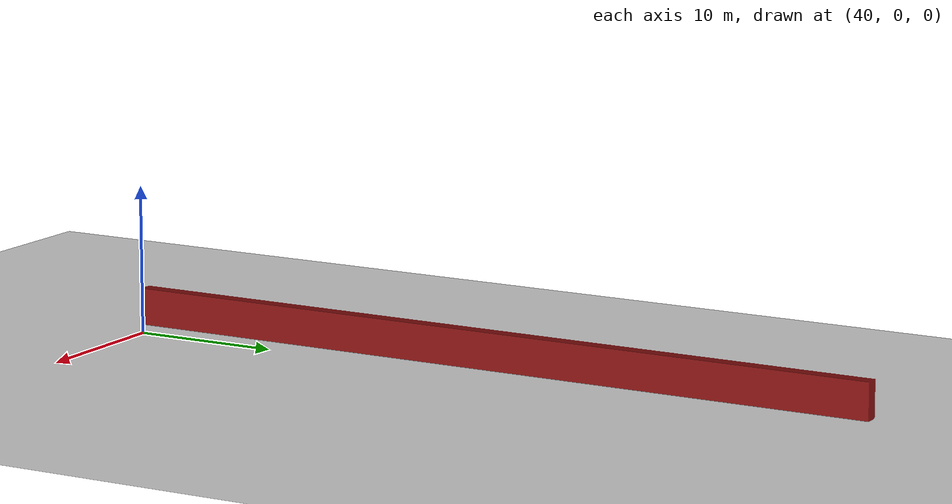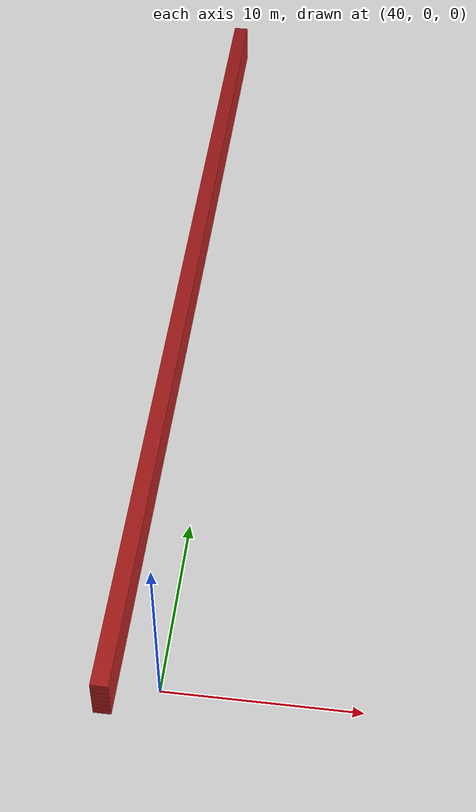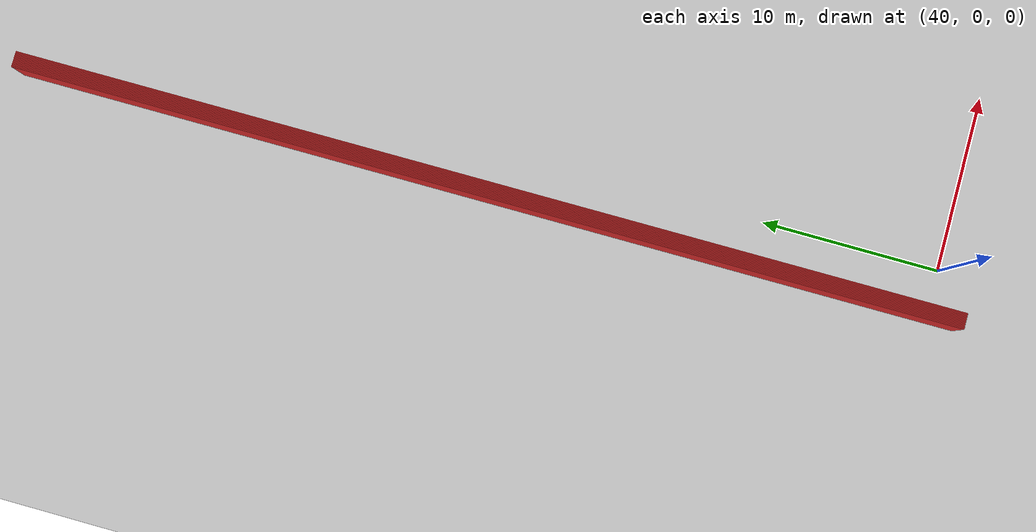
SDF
<sdf version="1.4">
 <world name="1_wall">
  <model name="ground_plane">
   <static>1</static>
   <link name="link">
    <collision name="collision">
     <geometry><plane><normal>0 0 1</normal><size>1000 1000</size></plane></geometry>
     <surface><friction><ode><mu>100</mu><mu2>50</mu2></ode></friction></surface>
    </collision>
    <visual name="visual">
     <cast_shadows>0</cast_shadows>
     <geometry><plane><normal>0 0 1</normal><size>10000 10000</size></plane></geometry>
     <material>
      <script><uri>file://media/materials/scripts/gazebo.material</uri><name>Gazebo/Grey</name></script>
     </material>
    </visual>
    <velocity_decay><linear>0</linear><angular>0</angular></velocity_decay>
   </link>
  </model>
  <model name="Wall_770">
   <static>1</static>
   <link name="Wall_770">
    <collision name="Wall_Collision_770">
     <geometry><box><size>53.65 0.05 2.5</size></box></geometry>
     <pose>0 0 1.25 0 -0 0</pose>
    </collision>
    <visual name="Wall_Visual_770">
     <pose>0 0 1.25 0 -0 0</pose>
     <geometry><box><size>53.65 0.05 2.5</size></box></geometry>
     <material>
      <script><uri>file://media/materials/scripts/gazebo.material</uri><name>Gazebo/Red</name></script>
     </material>
    </visual>
    <velocity_decay><linear>0</linear><angular>0</angular></velocity_decay>
    <pose>37.0 25.3 0 0 0 1.5707963267948966</pose>
   </link>
  </model>
  <model name="Wall_771">
   <static>1</static>
   <link name="Wall_771">
    <collision name="Wall_Collision_771">
     <geometry><box><size>53.65 0.05 2.5</size></box></geometry>
     <pose>0 0 1.25 0 -0 0</pose>
    </collision>
    <visual name="Wall_Visual_771">
     <pose>0 0 1.25 0 -0 0</pose>
     <geometry><box><size>53.65 0.05 2.5</size></box></geometry>
     <material>
      <script><uri>file://media/materials/scripts/gazebo.material</uri><name>Gazebo/Red</name></script>
     </material>
    </visual>
    <velocity_decay><linear>0</linear><angular>0</angular></velocity_decay>
    <pose>37.05 25.3 0 0 0 1.5707963267948966</pose>
   </link>
  </model>
  <model name="Wall_772">
   <static>1</static>
   <link name="Wall_772">
    <collision name="Wall_Collision_772">
     <geometry><box><size>53.65 0.05 2.5</size></box></geometry>
     <pose>0 0 1.25 0 -0 0</pose>
    </collision>
    <visual name="Wall_Visual_772">
     <pose>0 0 1.25 0 -0 0</pose>
     <geometry><box><size>53.65 0.05 2.5</size></box></geometry>
     <material>
      <script><uri>file://media/materials/scripts/gazebo.material</uri><name>Gazebo/Red</name></script>
     </material>
    </visual>
    <velocity_decay><linear>0</linear><angular>0</angular></velocity_decay>
    <pose>37.1 25.3 0 0 0 1.5707963267948966</pose>
   </link>
  </model>
  <model name="Wall_773">
   <static>1</static>
   <link name="Wall_773">
    <collision name="Wall_Collision_773">
     <geometry><box><size>53.65 0.05 2.5</size></box></geometry>
     <pose>0 0 1.25 0 -0 0</pose>
    </collision>
    <visual name="Wall_Visual_773">
     <pose>0 0 1.25 0 -0 0</pose>
     <geometry><box><size>53.65 0.05 2.5</size></box></geometry>
     <material>
      <script><uri>file://media/materials/scripts/gazebo.material</uri><name>Gazebo/Red</name></script>
     </material>
    </visual>
    <velocity_decay><linear>0</linear><angular>0</angular></velocity_decay>
    <pose>37.15 25.3 0 0 0 1.5707963267948966</pose>
   </link>
  </model>
  <model name="Wall_774">
   <static>1</static>
   <link name="Wall_774">
    <collision name="Wall_Collision_774">
     <geometry><box><size>53.65 0.05 2.5</size></box></geometry>
     <pose>0 0 1.25 0 -0 0</pose>
    </collision>
    <visual name="Wall_Visual_774">
     <pose>0 0 1.25 0 -0 0</pose>
     <geometry><box><size>53.65 0.05 2.5</size></box></geometry>
     <material>
      <script><uri>file://media/materials/scripts/gazebo.material</uri><name>Gazebo/Red</name></script>
     </material>
    </visual>
    <velocity_decay><linear>0</linear><angular>0</angular></velocity_decay>
    <pose>37.2 25.3 0 0 0 1.5707963267948966</pose>
   </link>
  </model>
  <model name="Wall_775">
   <static>1</static>
   <link name="Wall_775">
    <collision name="Wall_Collision_775">
     <geometry><box><size>53.65 0.05 2.5</size></box></geometry>
     <pose>0 0 1.25 0 -0 0</pose>
    </collision>
    <visual name="Wall_Visual_775">
     <pose>0 0 1.25 0 -0 0</pose>
     <geometry><box><size>53.65 0.05 2.5</size></box></geometry>
     <material>
      <script><uri>file://media/materials/scripts/gazebo.material</uri><name>Gazebo/Red</name></script>
     </material>
    </visual>
    <velocity_decay><linear>0</linear><angular>0</angular></velocity_decay>
    <pose>37.25 25.3 0 0 0 1.5707963267948966</pose>
   </link>
  </model>
  <model name="Wall_776">
   <static>1</static>
   <link name="Wall_776">
    <collision name="Wall_Collision_776">
     <geometry><box><size>53.65 0.05 2.5</size></box></geometry>
     <pose>0 0 1.25 0 -0 0</pose>
    </collision>
    <visual name="Wall_Visual_776">
     <pose>0 0 1.25 0 -0 0</pose>
     <geometry><box><size>53.65 0.05 2.5</size></box></geometry>
     <material>
      <script><uri>file://media/materials/scripts/gazebo.material</uri><name>Gazebo/Red</name></script>
     </material>
    </visual>
    <velocity_decay><linear>0</linear><angular>0</angular></velocity_decay>
    <pose>37.3 25.3 0 0 0 1.5707963267948966</pose>
   </link>
  </model>
  <model name="Wall_777">
   <static>1</static>
   <link name="Wall_777">
    <collision name="Wall_Collision_777">
     <geometry><box><size>53.65 0.05 2.5</size></box></geometry>
     <pose>0 0 1.25 0 -0 0</pose>
    </collision>
    <visual name="Wall_Visual_777">
     <pose>0 0 1.25 0 -0 0</pose>
     <geometry><box><size>53.65 0.05 2.5</size></box></geometry>
     <material>
      <script><uri>file://media/materials/scripts/gazebo.material</uri><name>Gazebo/Red</name></script>
     </material>
    </visual>
    <velocity_decay><linear>0</linear><angular>0</angular></velocity_decay>
    <pose>37.35 25.3 0 0 0 1.5707963267948966</pose>
   </link>
  </model>
  <model name="Wall_778">
   <static>1</static>
   <link name="Wall_778">
    <collision name="Wall_Collision_778">
     <geometry><box><size>53.65 0.05 2.5</size></box></geometry>
     <pose>0 0 1.25 0 -0 0</pose>
    </collision>
    <visual name="Wall_Visual_778">
     <pose>0 0 1.25 0 -0 0</pose>
     <geometry><box><size>53.65 0.05 2.5</size></box></geometry>
     <material>
      <script><uri>file://media/materials/scripts/gazebo.material</uri><name>Gazebo/Red</name></script>
     </material>
    </visual>
    <velocity_decay><linear>0</linear><angular>0</angular></velocity_decay>
    <pose>37.4 25.3 0 0 0 1.5707963267948966</pose>
   </link>
  </model>
  <model name="Wall_779">
   <static>1</static>
   <link name="Wall_779">
    <collision name="Wall_Collision_779">
     <geometry><box><size>53.65 0.05 2.5</size></box></geometry>
     <pose>0 0 1.25 0 -0 0</pose>
    </collision>
    <visual name="Wall_Visual_779">
     <pose>0 0 1.25 0 -0 0</pose>
     <geometry><box><size>53.65 0.05 2.5</size></box></geometry>
     <material>
      <script><uri>file://media/materials/scripts/gazebo.material</uri><name>Gazebo/Red</name></script>
     </material>
    </visual>
    <velocity_decay><linear>0</linear><angular>0</angular></velocity_decay>
    <pose>37.45 25.3 0 0 0 1.5707963267948966</pose>
   </link>
  </model>
  <model name="Wall_780">
   <static>1</static>
   <link name="Wall_780">
    <collision name="Wall_Collision_780">
     <geometry><box><size>53.65 0.05 2.5</size></box></geometry>
     <pose>0 0 1.25 0 -0 0</pose>
    </collision>
    <visual name="Wall_Visual_780">
     <pose>0 0 1.25 0 -0 0</pose>
     <geometry><box><size>53.65 0.05 2.5</size></box></geometry>
     <material>
      <script><uri>file://media/materials/scripts/gazebo.material</uri><name>Gazebo/Red</name></script>
     </material>
    </visual>
    <velocity_decay><linear>0</linear><angular>0</angular></velocity_decay>
    <pose>37.5 25.3 0 0 0 1.5707963267948966</pose>
   </link>
  </model>
  <model name="Wall_781">
   <static>1</static>
   <link name="Wall_781">
    <collision name="Wall_Collision_781">
     <geometry><box><size>53.65 0.05 2.5</size></box></geometry>
     <pose>0 0 1.25 0 -0 0</pose>
    </collision>
    <visual name="Wall_Visual_781">
     <pose>0 0 1.25 0 -0 0</pose>
     <geometry><box><size>53.65 0.05 2.5</size></box></geometry>
     <material>
      <script><uri>file://media/materials/scripts/gazebo.material</uri><name>Gazebo/Red</name></script>
     </material>
    </visual>
    <velocity_decay><linear>0</linear><angular>0</angular></velocity_decay>
    <pose>37.55 25.3 0 0 0 1.5707963267948966</pose>
   </link>
  </model>
  <model name="Wall_782">
   <static>1</static>
   <link name="Wall_782">
    <collision name="Wall_Collision_782">
     <geometry><box><size>53.65 0.05 2.5</size></box></geometry>
     <pose>0 0 1.25 0 -0 0</pose>
    </collision>
    <visual name="Wall_Visual_782">
     <pose>0 0 1.25 0 -0 0</pose>
     <geometry><box><size>53.65 0.05 2.5</size></box></geometry>
     <material>
      <script><uri>file://media/materials/scripts/gazebo.material</uri><name>Gazebo/Red</name></script>
     </material>
    </visual>
    <velocity_decay><linear>0</linear><angular>0</angular></velocity_decay>
    <pose>37.6 25.3 0 0 0 1.5707963267948966</pose>
   </link>
  </model>
  <model name="Wall_783">
   <static>1</static>
   <link name="Wall_783">
    <collision name="Wall_Collision_783">
     <geometry><box><size>53.65 0.05 2.5</size></box></geometry>
     <pose>0 0 1.25 0 -0 0</pose>
    </collision>
    <visual name="Wall_Visual_783">
     <pose>0 0 1.25 0 -0 0</pose>
     <geometry><box><size>53.65 0.05 2.5</size></box></geometry>
     <material>
      <script><uri>file://media/materials/scripts/gazebo.material</uri><name>Gazebo/Red</name></script>
     </material>
    </visual>
    <velocity_decay><linear>0</linear><angular>0</angular></velocity_decay>
    <pose>37.65 25.3 0 0 0 1.5707963267948966</pose>
   </link>
  </model>
  <model name="Wall_784">
   <static>1</static>
   <link name="Wall_784">
    <collision name="Wall_Collision_784">
     <geometry><box><size>53.65 0.05 2.5</size></box></geometry>
     <pose>0 0 1.25 0 -0 0</pose>
    </collision>
    <visual name="Wall_Visual_784">
     <pose>0 0 1.25 0 -0 0</pose>
     <geometry><box><size>53.65 0.05 2.5</size></box></geometry>
     <material>
      <script><uri>file://media/materials/scripts/gazebo.material</uri><name>Gazebo/Red</name></script>
     </material>
    </visual>
    <velocity_decay><linear>0</linear><angular>0</angular></velocity_decay>
    <pose>37.7 25.3 0 0 0 1.5707963267948966</pose>
   </link>
  </model>
  <model name="Wall_785">
   <static>1</static>
   <link name="Wall_785">
    <collision name="Wall_Collision_785">
     <geometry><box><size>53.65 0.05 2.5</size></box></geometry>
     <pose>0 0 1.25 0 -0 0</pose>
    </collision>
    <visual name="Wall_Visual_785">
     <pose>0 0 1.25 0 -0 0</pose>
     <geometry><box><size>53.65 0.05 2.5</size></box></geometry>
     <material>
      <script><uri>file://media/materials/scripts/gazebo.material</uri><name>Gazebo/Red</name></script>
     </material>
    </visual>
    <velocity_decay><linear>0</linear><angular>0</angular></velocity_decay>
    <pose>37.75 25.3 0 0 0 1.5707963267948966</pose>
   </link>
  </model>
  <model name="Wall_786">
   <static>1</static>
   <link name="Wall_786">
    <collision name="Wall_Collision_786">
     <geometry><box><size>53.65 0.05 2.5</size></box></geometry>
     <pose>0 0 1.25 0 -0 0</pose>
    </collision>
    <visual name="Wall_Visual_786">
     <pose>0 0 1.25 0 -0 0</pose>
     <geometry><box><size>53.65 0.05 2.5</size></box></geometry>
     <material>
      <script><uri>file://media/materials/scripts/gazebo.material</uri><name>Gazebo/Red</name></script>
     </material>
    </visual>
    <velocity_decay><linear>0</linear><angular>0</angular></velocity_decay>
    <pose>37.8 25.3 0 0 0 1.5707963267948966</pose>
   </link>
  </model>
  <model name="Wall_787">
   <static>1</static>
   <link name="Wall_787">
    <collision name="Wall_Collision_787">
     <geometry><box><size>53.65 0.05 2.5</size></box></geometry>
     <pose>0 0 1.25 0 -0 0</pose>
    </collision>
    <visual name="Wall_Visual_787">
     <pose>0 0 1.25 0 -0 0</pose>
     <geometry><box><size>53.65 0.05 2.5</size></box></geometry>
     <material>
      <script><uri>file://media/materials/scripts/gazebo.material</uri><name>Gazebo/Red</name></script>
     </material>
    </visual>
    <velocity_decay><linear>0</linear><angular>0</angular></velocity_decay>
    <pose>37.85 25.3 0 0 0 1.5707963267948966</pose>
   </link>
  </model>
 </world>
</sdf>
